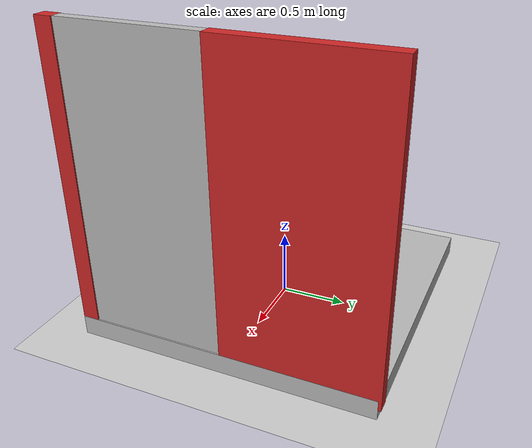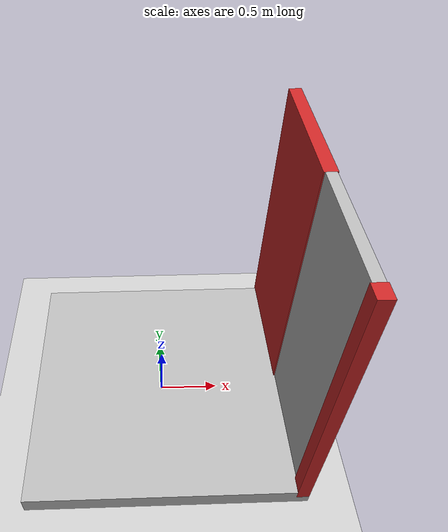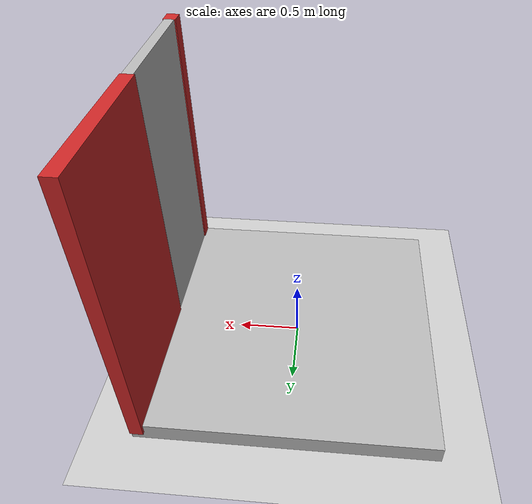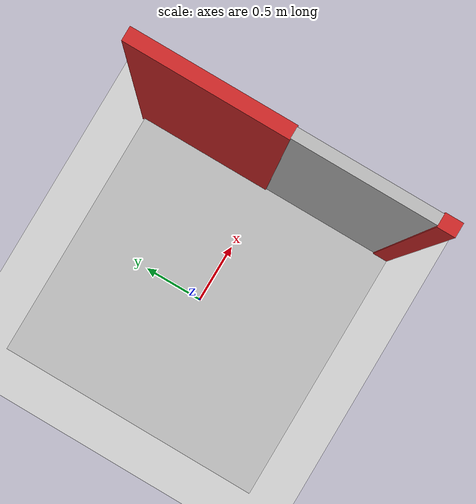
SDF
<sdf version="1.6">
 <world name="default">
  <model name="ground_plane">
   <static>1</static>
   <link name="link">
    <collision name="collision">
     <geometry><plane><normal>0 0 1</normal><size>1000 1000</size></plane></geometry>
     <surface><friction><ode><mu>100</mu><mu2>50</mu2></ode></friction></surface>
    </collision>
    <visual name="visual">
     <cast_shadows>0</cast_shadows>
     <geometry><plane><normal>0 0 1</normal><size>1000 1000</size></plane></geometry>
     <material>
      <script><uri>file://media/materials/scripts/gazebo.material</uri><name>Gazebo/Grey</name></script>
     </material>
    </visual>
   </link>
  </model>
  <model name="elevator">
   <pose>-0 -0 0.075 -0 -0 -2e-06</pose>
   <link name="link">
    <inertial>
     <mass>800</mass>
     <inertia><ixx>1</ixx><ixy>0</ixy><ixz>0</ixz><iyy>1</iyy><iyz>0</iyz><izz>1</izz></inertia>
    </inertial>
    <collision name="floor_collision"><geometry><box><size>2.25 2.25 0.15</size></box></geometry></collision>
    <visual name="floor_visual"><geometry><box><size>2.25 2.25 0.15</size></box></geometry></visual>
    <collision name="wall1_collision">
     <pose>1.0745 0.5725 1.125 0 -0 0</pose>
     <geometry><box><size>0.1 1.15 2.25</size></box></geometry>
    </collision>
    <visual name="wall1_visual">
     <pose>1.0745 0.5725 1.125 0 -0 0</pose>
     <geometry><box><size>0.1 1.15 2.25</size></box></geometry>
     <material><script><name>Gazebo/Red</name><uri>__default__</uri></script></material>
    </visual>
    <collision name="wall2_collision">
     <pose>1.0745 -1.0625 1.125 0 -0 0</pose>
     <geometry><box><size>0.1 0.125 2.25</size></box></geometry>
    </collision>
    <visual name="wall2_visual">
     <pose>1.0745 -1.0625 1.125 0 -0 0</pose>
     <geometry><box><size>0.1 0.125 2.25</size></box></geometry>
     <material><script><name>Gazebo/Red</name><uri>__default__</uri></script></material>
    </visual>
   </link>
   <link name="door">
    <pose>1.0745 -0.5 1.125 0 -0 0</pose>
    <collision name="collision"><geometry><box><size>0.08 1 2.25</size></box></geometry></collision>
    <visual name="visual"><geometry><box><size>0.08 1 2.25</size></box></geometry></visual>
    <inertial>
     <inertia><ixx>1</ixx><ixy>0</ixy><ixz>0</ixz><iyy>1</iyy><iyz>0</iyz><izz>1</izz></inertia>
     <mass>1</mass>
    </inertial>
   </link>
   <joint name="door" type="prismatic">
    <parent>link</parent>
    <child>door</child>
    <axis>
     <xyz>0 1 0</xyz>
     <limit><lower>0</lower><upper>1</upper><effort>10</effort></limit>
     <dynamics>
      <damping>2</damping>
      <spring_reference>0</spring_reference>
      <spring_stiffness>0</spring_stiffness>
     </dynamics>
     <use_parent_model_frame>0</use_parent_model_frame>
    </axis>
   </joint>
   <joint name="lift" type="prismatic">
    <parent>world</parent>
    <child>link</child>
    <axis>
     <xyz>0 0 1</xyz>
     <limit><lower>0</lower><upper>10</upper><effort>100000</effort></limit>
     <dynamics>
      <damping>50</damping>
      <spring_reference>0</spring_reference>
      <spring_stiffness>0</spring_stiffness>
     </dynamics>
     <use_parent_model_frame>0</use_parent_model_frame>
    </axis>
    <physics>
     <ode><implicit_spring_damper>1</implicit_spring_damper><limit><cfm>0</cfm><erp>0.2</erp></limit></ode>
    </physics>
   </joint>
   <plugin name="elevator_plugin" filename="libgazebo_ros_elevator.so">
    <lift_joint>elevator::lift</lift_joint>
    <door_joint>elevator::door</door_joint>
    <floor_height>3.075</floor_height>
    <door_wait_time>5</door_wait_time>
    <topic>elevator</topic>
   </plugin>
  </model>
 </world>
</sdf>
